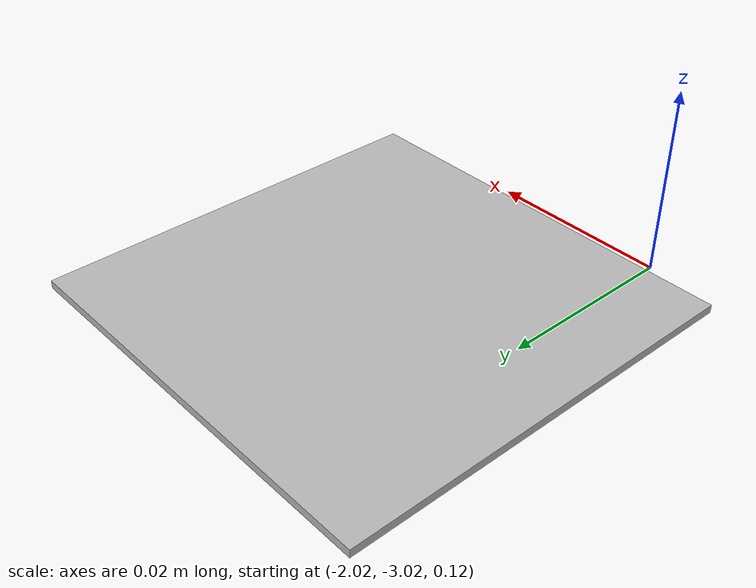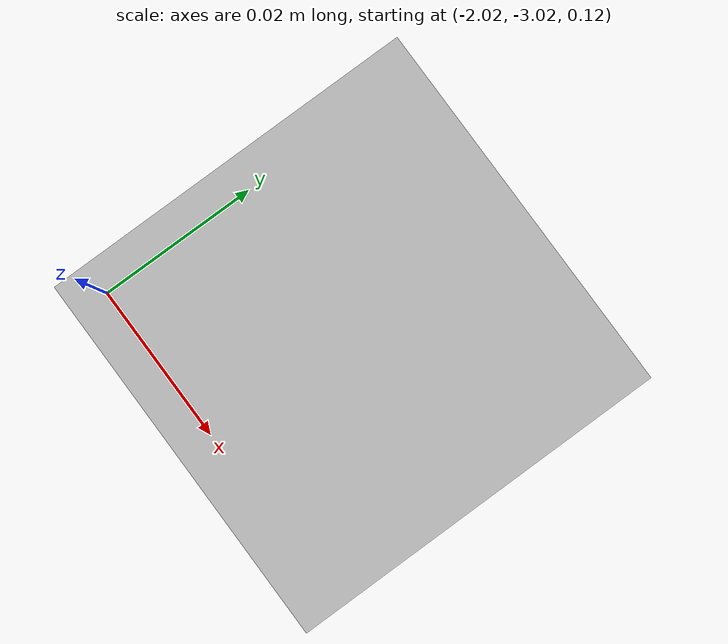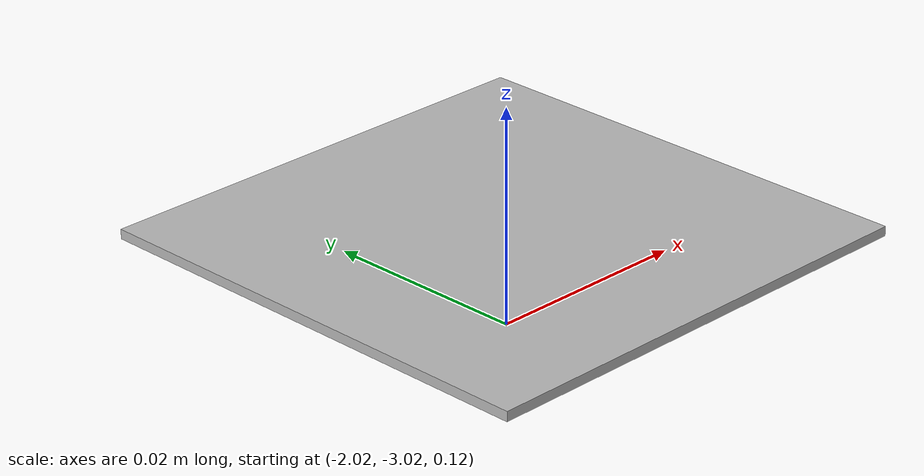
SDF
<?xml version="1.0" ?>
<sdf version="1.5">
  <world name="default">
    <!-- A global light source -->
    <include>
      <uri>model://sun</uri>
    </include>
    <!-- A ground plane -->
    <include>
      <uri>model://ground_plane</uri>
    </include>
    <include>
      <uri>model://asphalt_plane</uri>
    </include>
    <include>
    <name>mark_label_1</name>
      <uri>model://mark_label_1</uri>
      <pose>-2 -3 0 0 0 0</pose>
    </include>
    <physics name='default_physics' default='0' type='ode'>
      <gravity>0 0 -9.8066</gravity>
      <ode>
        <solver>
          <type>quick</type>
          <iters>10</iters>
          <sor>1.3</sor>
          <use_dynamic_moi_rescaling>0</use_dynamic_moi_rescaling>
        </solver>
        <constraints>
          <cfm>0</cfm>
          <erp>0.2</erp>
          <contact_max_correcting_vel>100</contact_max_correcting_vel>
          <contact_surface_layer>0.001</contact_surface_layer>
        </constraints>
      </ode>
      <max_step_size>0.004</max_step_size>
      <real_time_factor>1</real_time_factor>
      <real_time_update_rate>250</real_time_update_rate>
      <magnetic_field>6.0e-6 2.3e-5 -4.2e-5</magnetic_field>
    </physics>
  </world>
</sdf>

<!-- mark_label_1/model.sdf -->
<sdf version='1.4'>
  <model name="mark_label_1">
    <link name='link'>
      <pose>0 0 0.115 0 0 0</pose>
      <inertial>
        <mass>0.390</mass>
        <inertia>
          <ixx>0.00058</ixx>
          <ixy>0</ixy>
          <ixz>0</ixz>
          <iyy>0.00058</iyy>
          <iyz>0</iyz>
          <izz>0.00019</izz>
        </inertia>
      </inertial>
      <collision name='collision'>
        <geometry>
                <box>
                  <size>.05 .05 .0001</size>
                </box>
        </geometry>
      </collision>

      <visual name='visual'>
        <geometry>
                <box>
                  <size>.05 .05 .001</size>
                </box>
        </geometry>

        <material>
          <script>
            <uri>model://mark_label_1/materials/scripts</uri>
            <uri>model://mark_label_1/materials/textures</uri>
            <name>Mark/Diffuse_1</name>
          </script>
        </material>
      </visual>
    </link>     
  </model>
</sdf>
